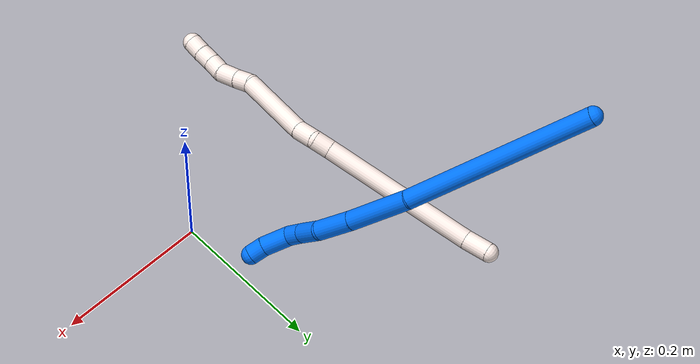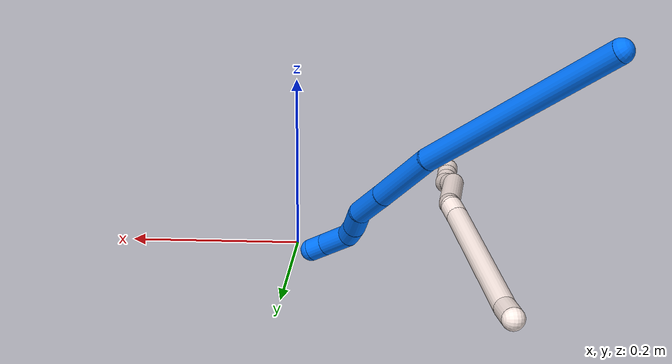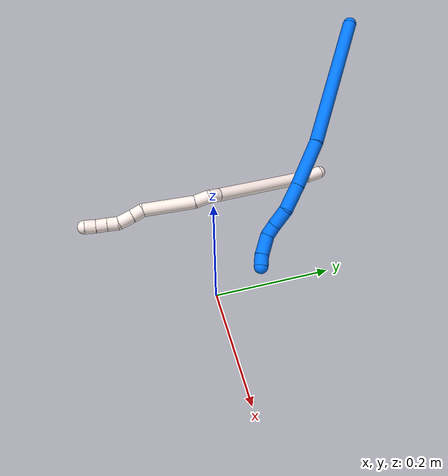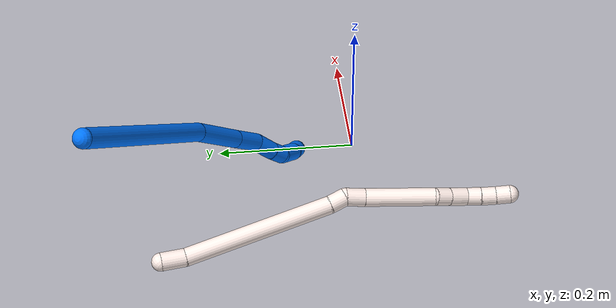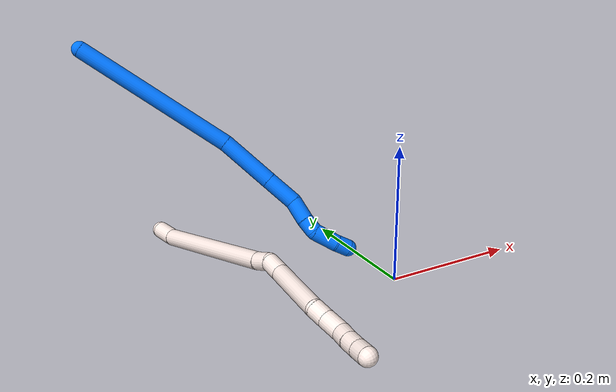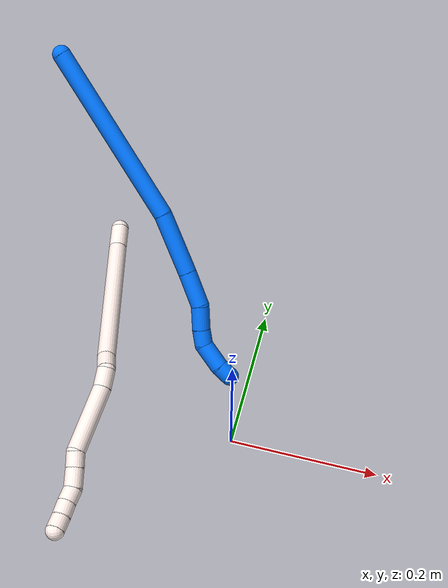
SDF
<sdf version="1.7">
 <world name="default">
  <model name="11">
   <static>0</static>
   <link name="11">
    <collision name="collision-cylinder-e_1_1_4">
     <pose>0.005634 -0.015909 -0.001959 1.6933 0.338007 0.381172</pose>
     <geometry><cylinder><radius>0.0125</radius><length>0.033981</length></cylinder></geometry>
     <surface>
      <friction><ode><mu>1.16</mu><mu2>1.16</mu2><slip1>0</slip1><slip2>0</slip2></ode></friction>
      <contact><ode><kp>1e+06</kp><kd>1</kd><max_vel>0</max_vel><min_depth>0.001</min_depth></ode></contact>
     </surface>
    </collision>
    <visual name="visual-cylinder-e_1_1_4">
     <pose>0.005634 -0.015909 -0.001959 1.6933 0.338007 0.381172</pose>
     <geometry><cylinder><radius>0.0125</radius><length>0.033981</length></cylinder></geometry>
     <material><ambient>1 0.933333 0.909804 1</ambient></material>
    </visual>
    <collision name="collision-cylinder-e_2_4_5">
     <pose>0.026203 -0.134518 -0.010772 1.63744 0.144089 0.153988</pose>
     <geometry><cylinder><radius>0.0125</radius><length>0.208013</length></cylinder></geometry>
     <surface>
      <friction><ode><mu>1.16</mu><mu2>1.16</mu2><slip1>0</slip1><slip2>0</slip2></ode></friction>
      <contact><ode><kp>1e+06</kp><kd>1</kd><max_vel>0</max_vel><min_depth>0.001</min_depth></ode></contact>
     </surface>
    </collision>
    <visual name="visual-cylinder-e_2_4_5">
     <pose>0.026203 -0.134518 -0.010772 1.63744 0.144089 0.153988</pose>
     <geometry><cylinder><radius>0.0125</radius><length>0.208013</length></cylinder></geometry>
     <material><ambient>1 0.933333 0.909804 1</ambient></material>
    </visual>
    <collision name="collision-cylinder-e_3_5_6">
     <pose>0.04164 -0.248876 -0.017371 1.54885 0.043123 0.042187</pose>
     <geometry><cylinder><radius>0.0125</radius><length>0.023342</length></cylinder></geometry>
     <surface>
      <friction><ode><mu>1.16</mu><mu2>1.16</mu2><slip1>0</slip1><slip2>0</slip2></ode></friction>
      <contact><ode><kp>1e+06</kp><kd>1</kd><max_vel>0</max_vel><min_depth>0.001</min_depth></ode></contact>
     </surface>
    </collision>
    <visual name="visual-cylinder-e_3_5_6">
     <pose>0.04164 -0.248876 -0.017371 1.54885 0.043123 0.042187</pose>
     <geometry><cylinder><radius>0.0125</radius><length>0.023342</length></cylinder></geometry>
     <material><ambient>1 0.933333 0.909804 1</ambient></material>
    </visual>
    <collision name="collision-cylinder-e_4_6_7">
     <pose>0.048545 -0.272419 -0.020482 1.84691 0.478115 0.623706</pose>
     <geometry><cylinder><radius>0.0125</radius><length>0.027827</length></cylinder></geometry>
     <surface>
      <friction><ode><mu>1.16</mu><mu2>1.16</mu2><slip1>0</slip1><slip2>0</slip2></ode></friction>
      <contact><ode><kp>1e+06</kp><kd>1</kd><max_vel>0</max_vel><min_depth>0.001</min_depth></ode></contact>
     </surface>
    </collision>
    <visual name="visual-cylinder-e_4_6_7">
     <pose>0.048545 -0.272419 -0.020482 1.84691 0.478115 0.623706</pose>
     <geometry><cylinder><radius>0.0125</radius><length>0.027827</length></cylinder></geometry>
     <material><ambient>1 0.933333 0.909804 1</ambient></material>
    </visual>
    <collision name="collision-cylinder-e_5_7_8">
     <pose>0.069093 -0.327359 -0.041275 1.95537 0.295646 0.434834</pose>
     <geometry><cylinder><radius>0.0125</radius><length>0.097107</length></cylinder></geometry>
     <surface>
      <friction><ode><mu>1.16</mu><mu2>1.16</mu2><slip1>0</slip1><slip2>0</slip2></ode></friction>
      <contact><ode><kp>1e+06</kp><kd>1</kd><max_vel>0</max_vel><min_depth>0.001</min_depth></ode></contact>
     </surface>
    </collision>
    <visual name="visual-cylinder-e_5_7_8">
     <pose>0.069093 -0.327359 -0.041275 1.95537 0.295646 0.434834</pose>
     <geometry><cylinder><radius>0.0125</radius><length>0.097107</length></cylinder></geometry>
     <material><ambient>1 0.933333 0.909804 1</ambient></material>
    </visual>
    <collision name="collision-cylinder-e_6_8_9">
     <pose>0.089251 -0.379295 -0.059736 1.68683 0.591847 0.659912</pose>
     <geometry><cylinder><radius>0.0125</radius><length>0.02155</length></cylinder></geometry>
     <surface>
      <friction><ode><mu>1.16</mu><mu2>1.16</mu2><slip1>0</slip1><slip2>0</slip2></ode></friction>
      <contact><ode><kp>1e+06</kp><kd>1</kd><max_vel>0</max_vel><min_depth>0.001</min_depth></ode></contact>
     </surface>
    </collision>
    <visual name="visual-cylinder-e_6_8_9">
     <pose>0.089251 -0.379295 -0.059736 1.68683 0.591847 0.659912</pose>
     <geometry><cylinder><radius>0.0125</radius><length>0.02155</length></cylinder></geometry>
     <material><ambient>1 0.933333 0.909804 1</ambient></material>
    </visual>
    <collision name="collision-cylinder-e_7_9_10">
     <pose>0.102233 -0.399691 -0.062392 1.71064 0.54011 0.616703</pose>
     <geometry><cylinder><radius>0.0125</radius><length>0.027113</length></cylinder></geometry>
     <surface>
      <friction><ode><mu>1.16</mu><mu2>1.16</mu2><slip1>0</slip1><slip2>0</slip2></ode></friction>
      <contact><ode><kp>1e+06</kp><kd>1</kd><max_vel>0</max_vel><min_depth>0.001</min_depth></ode></contact>
     </surface>
    </collision>
    <visual name="visual-cylinder-e_7_9_10">
     <pose>0.102233 -0.399691 -0.062392 1.71064 0.54011 0.616703</pose>
     <geometry><cylinder><radius>0.0125</radius><length>0.027113</length></cylinder></geometry>
     <material><ambient>1 0.933333 0.909804 1</ambient></material>
    </visual>
    <collision name="collision-cylinder-e_8_10_11">
     <pose>0.111908 -0.420252 -0.068057 1.99122 0.266315 0.407496</pose>
     <geometry><cylinder><radius>0.0125</radius><length>0.020547</length></cylinder></geometry>
     <surface>
      <friction><ode><mu>1.16</mu><mu2>1.16</mu2><slip1>0</slip1><slip2>0</slip2></ode></friction>
      <contact><ode><kp>1e+06</kp><kd>1</kd><max_vel>0</max_vel><min_depth>0.001</min_depth></ode></contact>
     </surface>
    </collision>
    <visual name="visual-cylinder-e_8_10_11">
     <pose>0.111908 -0.420252 -0.068057 1.99122 0.266315 0.407496</pose>
     <geometry><cylinder><radius>0.0125</radius><length>0.020547</length></cylinder></geometry>
     <material><ambient>1 0.933333 0.909804 1</ambient></material>
    </visual>
    <collision name="collision-cylinder-e_9_11_12">
     <pose>0.117219 -0.438579 -0.075473 1.91919 0.258149 0.366318</pose>
     <geometry><cylinder><radius>0.0125</radius><length>0.020419</length></cylinder></geometry>
     <surface>
      <friction><ode><mu>1.16</mu><mu2>1.16</mu2><slip1>0</slip1><slip2>0</slip2></ode></friction>
      <contact><ode><kp>1e+06</kp><kd>1</kd><max_vel>0</max_vel><min_depth>0.001</min_depth></ode></contact>
     </surface>
    </collision>
    <visual name="visual-cylinder-e_9_11_12">
     <pose>0.117219 -0.438579 -0.075473 1.91919 0.258149 0.366318</pose>
     <geometry><cylinder><radius>0.0125</radius><length>0.020419</length></cylinder></geometry>
     <material><ambient>1 0.933333 0.909804 1</ambient></material>
    </visual>
    <collision name="collision-cylinder-e_10_12_2">
     <pose>0.121678 -0.457079 -0.082382 1.93729 0.185432 0.268943</pose>
     <geometry><cylinder><radius>0.0125</radius><length>0.020101</length></cylinder></geometry>
     <surface>
      <friction><ode><mu>1.16</mu><mu2>1.16</mu2><slip1>0</slip1><slip2>0</slip2></ode></friction>
      <contact><ode><kp>1e+06</kp><kd>1</kd><max_vel>0</max_vel><min_depth>0.001</min_depth></ode></contact>
     </surface>
    </collision>
    <visual name="visual-cylinder-e_10_12_2">
     <pose>0.121678 -0.457079 -0.082382 1.93729 0.185432 0.268943</pose>
     <geometry><cylinder><radius>0.0125</radius><length>0.020101</length></cylinder></geometry>
     <material><ambient>1 0.933333 0.909804 1</ambient></material>
    </visual>
    <collision name="collision-sphere-2">
     <pose>0.123531 -0.466301 -0.085922 0 -0 0</pose>
     <geometry><sphere><radius>0.0125</radius></sphere></geometry>
     <surface>
      <friction><ode><mu>1.16</mu><mu2>1.16</mu2><slip1>0</slip1><slip2>0</slip2></ode></friction>
      <contact><ode><kp>1e+06</kp><kd>1</kd><max_vel>0</max_vel><min_depth>0.001</min_depth></ode></contact>
     </surface>
    </collision>
    <visual name="visual-sphere-2">
     <pose>0.123531 -0.466301 -0.085922 0 -0 0</pose>
     <geometry><sphere><radius>0.0125</radius></sphere></geometry>
     <material><ambient>1 0.933333 0.909804 1</ambient></material>
    </visual>
    <collision name="collision-sphere-12">
     <pose>0.119825 -0.447857 -0.078842 0 -0 0</pose>
     <geometry><sphere><radius>0.0125</radius></sphere></geometry>
     <surface>
      <friction><ode><mu>1.16</mu><mu2>1.16</mu2><slip1>0</slip1><slip2>0</slip2></ode></friction>
      <contact><ode><kp>1e+06</kp><kd>1</kd><max_vel>0</max_vel><min_depth>0.001</min_depth></ode></contact>
     </surface>
    </collision>
    <visual name="visual-sphere-12">
     <pose>0.119825 -0.447857 -0.078842 0 -0 0</pose>
     <geometry><sphere><radius>0.0125</radius></sphere></geometry>
     <material><ambient>1 0.933333 0.909804 1</ambient></material>
    </visual>
    <collision name="collision-sphere-11">
     <pose>0.114612 -0.429301 -0.072103 0 -0 0</pose>
     <geometry><sphere><radius>0.0125</radius></sphere></geometry>
     <surface>
      <friction><ode><mu>1.16</mu><mu2>1.16</mu2><slip1>0</slip1><slip2>0</slip2></ode></friction>
      <contact><ode><kp>1e+06</kp><kd>1</kd><max_vel>0</max_vel><min_depth>0.001</min_depth></ode></contact>
     </surface>
    </collision>
    <visual name="visual-sphere-11">
     <pose>0.114612 -0.429301 -0.072103 0 -0 0</pose>
     <geometry><sphere><radius>0.0125</radius></sphere></geometry>
     <material><ambient>1 0.933333 0.909804 1</ambient></material>
    </visual>
    <collision name="collision-sphere-10">
     <pose>0.109205 -0.411204 -0.064012 0 -0 0</pose>
     <geometry><sphere><radius>0.0125</radius></sphere></geometry>
     <surface>
      <friction><ode><mu>1.16</mu><mu2>1.16</mu2><slip1>0</slip1><slip2>0</slip2></ode></friction>
      <contact><ode><kp>1e+06</kp><kd>1</kd><max_vel>0</max_vel><min_depth>0.001</min_depth></ode></contact>
     </surface>
    </collision>
    <visual name="visual-sphere-10">
     <pose>0.109205 -0.411204 -0.064012 0 -0 0</pose>
     <geometry><sphere><radius>0.0125</radius></sphere></geometry>
     <material><ambient>1 0.933333 0.909804 1</ambient></material>
    </visual>
    <collision name="collision-sphere-9">
     <pose>0.095262 -0.388177 -0.060771 0 -0 0</pose>
     <geometry><sphere><radius>0.0125</radius></sphere></geometry>
     <surface>
      <friction><ode><mu>1.16</mu><mu2>1.16</mu2><slip1>0</slip1><slip2>0</slip2></ode></friction>
      <contact><ode><kp>1e+06</kp><kd>1</kd><max_vel>0</max_vel><min_depth>0.001</min_depth></ode></contact>
     </surface>
    </collision>
    <visual name="visual-sphere-9">
     <pose>0.095262 -0.388177 -0.060771 0 -0 0</pose>
     <geometry><sphere><radius>0.0125</radius></sphere></geometry>
     <material><ambient>1 0.933333 0.909804 1</ambient></material>
    </visual>
    <collision name="collision-sphere-4">
     <pose>0.011268 -0.031818 -0.003917 0 -0 0</pose>
     <geometry><sphere><radius>0.0125</radius></sphere></geometry>
     <surface>
      <friction><ode><mu>1.16</mu><mu2>1.16</mu2><slip1>0</slip1><slip2>0</slip2></ode></friction>
      <contact><ode><kp>1e+06</kp><kd>1</kd><max_vel>0</max_vel><min_depth>0.001</min_depth></ode></contact>
     </surface>
    </collision>
    <visual name="visual-sphere-4">
     <pose>0.011268 -0.031818 -0.003917 0 -0 0</pose>
     <geometry><sphere><radius>0.0125</radius></sphere></geometry>
     <material><ambient>1 0.933333 0.909804 1</ambient></material>
    </visual>
    <collision name="collision-sphere-1">
     <geometry><sphere><radius>0.0125</radius></sphere></geometry>
     <surface>
      <friction><ode><mu>1.16</mu><mu2>1.16</mu2><slip1>0</slip1><slip2>0</slip2></ode></friction>
      <contact><ode><kp>1e+06</kp><kd>1</kd><max_vel>0</max_vel><min_depth>0.001</min_depth></ode></contact>
     </surface>
    </collision>
    <visual name="visual-sphere-1">
     <geometry><sphere><radius>0.0125</radius></sphere></geometry>
     <material><ambient>1 0.933333 0.909804 1</ambient></material>
    </visual>
    <collision name="collision-sphere-8">
     <pose>0.08324 -0.370413 -0.0587 0 -0 0</pose>
     <geometry><sphere><radius>0.0125</radius></sphere></geometry>
     <surface>
      <friction><ode><mu>1.16</mu><mu2>1.16</mu2><slip1>0</slip1><slip2>0</slip2></ode></friction>
      <contact><ode><kp>1e+06</kp><kd>1</kd><max_vel>0</max_vel><min_depth>0.001</min_depth></ode></contact>
     </surface>
    </collision>
    <visual name="visual-sphere-8">
     <pose>0.08324 -0.370413 -0.0587 0 -0 0</pose>
     <geometry><sphere><radius>0.0125</radius></sphere></geometry>
     <material><ambient>1 0.933333 0.909804 1</ambient></material>
    </visual>
    <collision name="collision-sphere-5">
     <pose>0.041137 -0.237219 -0.017626 0 -0 0</pose>
     <geometry><sphere><radius>0.0125</radius></sphere></geometry>
     <surface>
      <friction><ode><mu>1.16</mu><mu2>1.16</mu2><slip1>0</slip1><slip2>0</slip2></ode></friction>
      <contact><ode><kp>1e+06</kp><kd>1</kd><max_vel>0</max_vel><min_depth>0.001</min_depth></ode></contact>
     </surface>
    </collision>
    <visual name="visual-sphere-5">
     <pose>0.041137 -0.237219 -0.017626 0 -0 0</pose>
     <geometry><sphere><radius>0.0125</radius></sphere></geometry>
     <material><ambient>1 0.933333 0.909804 1</ambient></material>
    </visual>
    <collision name="collision-sphere-6">
     <pose>0.042143 -0.260534 -0.017115 0 -0 0</pose>
     <geometry><sphere><radius>0.0125</radius></sphere></geometry>
     <surface>
      <friction><ode><mu>1.16</mu><mu2>1.16</mu2><slip1>0</slip1><slip2>0</slip2></ode></friction>
      <contact><ode><kp>1e+06</kp><kd>1</kd><max_vel>0</max_vel><min_depth>0.001</min_depth></ode></contact>
     </surface>
    </collision>
    <visual name="visual-sphere-6">
     <pose>0.042143 -0.260534 -0.017115 0 -0 0</pose>
     <geometry><sphere><radius>0.0125</radius></sphere></geometry>
     <material><ambient>1 0.933333 0.909804 1</ambient></material>
    </visual>
    <collision name="collision-sphere-7">
     <pose>0.054947 -0.284304 -0.02385 0 -0 0</pose>
     <geometry><sphere><radius>0.0125</radius></sphere></geometry>
     <surface>
      <friction><ode><mu>1.16</mu><mu2>1.16</mu2><slip1>0</slip1><slip2>0</slip2></ode></friction>
      <contact><ode><kp>1e+06</kp><kd>1</kd><max_vel>0</max_vel><min_depth>0.001</min_depth></ode></contact>
     </surface>
    </collision>
    <visual name="visual-sphere-7">
     <pose>0.054947 -0.284304 -0.02385 0 -0 0</pose>
     <geometry><sphere><radius>0.0125</radius></sphere></geometry>
     <material><ambient>1 0.933333 0.909804 1</ambient></material>
    </visual>
    <inertial>
     <pose>0.053016 -0.238979 -0.02973 0 -0 0</pose>
     <mass>0.5</mass>
     <inertia><ixx>0.00099</ixx><ixy>0</ixy><ixz>0</ixz><iyy>6.6e-05</iyy><iyz>0</iyz><izz>0.000691</izz></inertia>
    </inertial>
   </link>
   <pose>-0.242801 0.287574 0.018854 -1.37767 1.24497 -1.08026</pose>
  </model>
  <model name="14">
   <static>0</static>
   <link name="14">
    <collision name="collision-cylinder-e_1_1_4">
     <pose>0.007711 -0.007174 -0.126222 3.08482 0.060916 1.64121</pose>
     <geometry><cylinder><radius>0.0125</radius><length>0.253321</length></cylinder></geometry>
     <surface>
      <friction><ode><mu>1.16</mu><mu2>1.16</mu2><slip1>0</slip1><slip2>0</slip2></ode></friction>
      <contact><ode><kp>1e+06</kp><kd>1</kd><max_vel>0</max_vel><min_depth>0.001</min_depth></ode></contact>
     </surface>
    </collision>
    <visual name="visual-cylinder-e_1_1_4">
     <pose>0.007711 -0.007174 -0.126222 3.08482 0.060916 1.64121</pose>
     <geometry><cylinder><radius>0.0125</radius><length>0.253321</length></cylinder></geometry>
     <material><ambient>0 0.462745 1 1</ambient></material>
    </visual>
    <collision name="collision-cylinder-e_2_4_5">
     <pose>0.016214 -0.02382 -0.294205 2.91854 0.018502 0.164844</pose>
     <geometry><cylinder><radius>0.0125</radius><length>0.085658</length></cylinder></geometry>
     <surface>
      <friction><ode><mu>1.16</mu><mu2>1.16</mu2><slip1>0</slip1><slip2>0</slip2></ode></friction>
      <contact><ode><kp>1e+06</kp><kd>1</kd><max_vel>0</max_vel><min_depth>0.001</min_depth></ode></contact>
     </surface>
    </collision>
    <visual name="visual-cylinder-e_2_4_5">
     <pose>0.016214 -0.02382 -0.294205 2.91854 0.018502 0.164844</pose>
     <geometry><cylinder><radius>0.0125</radius><length>0.085658</length></cylinder></geometry>
     <material><ambient>0 0.462745 1 1</ambient></material>
    </visual>
    <collision name="collision-cylinder-e_3_5_6">
     <pose>0.018259 -0.039391 -0.359557 2.88859 0.051374 0.39867</pose>
     <geometry><cylinder><radius>0.0125</radius><length>0.048798</length></cylinder></geometry>
     <surface>
      <friction><ode><mu>1.16</mu><mu2>1.16</mu2><slip1>0</slip1><slip2>0</slip2></ode></friction>
      <contact><ode><kp>1e+06</kp><kd>1</kd><max_vel>0</max_vel><min_depth>0.001</min_depth></ode></contact>
     </surface>
    </collision>
    <visual name="visual-cylinder-e_3_5_6">
     <pose>0.018259 -0.039391 -0.359557 2.88859 0.051374 0.39867</pose>
     <geometry><cylinder><radius>0.0125</radius><length>0.048798</length></cylinder></geometry>
     <material><ambient>0 0.462745 1 1</ambient></material>
    </visual>
    <collision name="collision-cylinder-e_4_6_7">
     <pose>0.018313 -0.054314 -0.397112 2.57805 -0.072508 -0.249296</pose>
     <geometry><cylinder><radius>0.0125</radius><length>0.033123</length></cylinder></geometry>
     <surface>
      <friction><ode><mu>1.16</mu><mu2>1.16</mu2><slip1>0</slip1><slip2>0</slip2></ode></friction>
      <contact><ode><kp>1e+06</kp><kd>1</kd><max_vel>0</max_vel><min_depth>0.001</min_depth></ode></contact>
     </surface>
    </collision>
    <visual name="visual-cylinder-e_4_6_7">
     <pose>0.018313 -0.054314 -0.397112 2.57805 -0.072508 -0.249296</pose>
     <geometry><cylinder><radius>0.0125</radius><length>0.033123</length></cylinder></geometry>
     <material><ambient>0 0.462745 1 1</ambient></material>
    </visual>
    <collision name="collision-cylinder-e_5_7_8">
     <pose>0.017007 -0.068038 -0.421089 2.68651 -0.009514 -0.041085</pose>
     <geometry><cylinder><radius>0.0125</radius><length>0.022298</length></cylinder></geometry>
     <surface>
      <friction><ode><mu>1.16</mu><mu2>1.16</mu2><slip1>0</slip1><slip2>0</slip2></ode></friction>
      <contact><ode><kp>1e+06</kp><kd>1</kd><max_vel>0</max_vel><min_depth>0.001</min_depth></ode></contact>
     </surface>
    </collision>
    <visual name="visual-cylinder-e_5_7_8">
     <pose>0.017007 -0.068038 -0.421089 2.68651 -0.009514 -0.041085</pose>
     <geometry><cylinder><radius>0.0125</radius><length>0.022298</length></cylinder></geometry>
     <material><ambient>0 0.462745 1 1</ambient></material>
    </visual>
    <collision name="collision-cylinder-e_6_8_9">
     <pose>0.019285 -0.073003 -0.449329 3.13803 0.130064 3.08685</pose>
     <geometry><cylinder><radius>0.0125</radius><length>0.036762</length></cylinder></geometry>
     <surface>
      <friction><ode><mu>1.16</mu><mu2>1.16</mu2><slip1>0</slip1><slip2>0</slip2></ode></friction>
      <contact><ode><kp>1e+06</kp><kd>1</kd><max_vel>0</max_vel><min_depth>0.001</min_depth></ode></contact>
     </surface>
    </collision>
    <visual name="visual-cylinder-e_6_8_9">
     <pose>0.019285 -0.073003 -0.449329 3.13803 0.130064 3.08685</pose>
     <geometry><cylinder><radius>0.0125</radius><length>0.036762</length></cylinder></geometry>
     <material><ambient>0 0.462745 1 1</ambient></material>
    </visual>
    <collision name="collision-cylinder-e_7_9_2">
     <pose>0.022211 -0.07116 -0.477376 -2.94973 0.05415 -0.548665</pose>
     <geometry><cylinder><radius>0.0125</radius><length>0.02004</length></cylinder></geometry>
     <surface>
      <friction><ode><mu>1.16</mu><mu2>1.16</mu2><slip1>0</slip1><slip2>0</slip2></ode></friction>
      <contact><ode><kp>1e+06</kp><kd>1</kd><max_vel>0</max_vel><min_depth>0.001</min_depth></ode></contact>
     </surface>
    </collision>
    <visual name="visual-cylinder-e_7_9_2">
     <pose>0.022211 -0.07116 -0.477376 -2.94973 0.05415 -0.548665</pose>
     <geometry><cylinder><radius>0.0125</radius><length>0.02004</length></cylinder></geometry>
     <material><ambient>0 0.462745 1 1</ambient></material>
    </visual>
    <collision name="collision-sphere-2">
     <pose>0.022753 -0.069252 -0.487198 0 -0 0</pose>
     <geometry><sphere><radius>0.0125</radius></sphere></geometry>
     <surface>
      <friction><ode><mu>1.16</mu><mu2>1.16</mu2><slip1>0</slip1><slip2>0</slip2></ode></friction>
      <contact><ode><kp>1e+06</kp><kd>1</kd><max_vel>0</max_vel><min_depth>0.001</min_depth></ode></contact>
     </surface>
    </collision>
    <visual name="visual-sphere-2">
     <pose>0.022753 -0.069252 -0.487198 0 -0 0</pose>
     <geometry><sphere><radius>0.0125</radius></sphere></geometry>
     <material><ambient>0 0.462745 1 1</ambient></material>
    </visual>
    <collision name="collision-sphere-9">
     <pose>0.021669 -0.073068 -0.467554 0 -0 0</pose>
     <geometry><sphere><radius>0.0125</radius></sphere></geometry>
     <surface>
      <friction><ode><mu>1.16</mu><mu2>1.16</mu2><slip1>0</slip1><slip2>0</slip2></ode></friction>
      <contact><ode><kp>1e+06</kp><kd>1</kd><max_vel>0</max_vel><min_depth>0.001</min_depth></ode></contact>
     </surface>
    </collision>
    <visual name="visual-sphere-9">
     <pose>0.021669 -0.073068 -0.467554 0 -0 0</pose>
     <geometry><sphere><radius>0.0125</radius></sphere></geometry>
     <material><ambient>0 0.462745 1 1</ambient></material>
    </visual>
    <collision name="collision-sphere-4">
     <pose>0.015422 -0.014348 -0.252444 0 -0 0</pose>
     <geometry><sphere><radius>0.0125</radius></sphere></geometry>
     <surface>
      <friction><ode><mu>1.16</mu><mu2>1.16</mu2><slip1>0</slip1><slip2>0</slip2></ode></friction>
      <contact><ode><kp>1e+06</kp><kd>1</kd><max_vel>0</max_vel><min_depth>0.001</min_depth></ode></contact>
     </surface>
    </collision>
    <visual name="visual-sphere-4">
     <pose>0.015422 -0.014348 -0.252444 0 -0 0</pose>
     <geometry><sphere><radius>0.0125</radius></sphere></geometry>
     <material><ambient>0 0.462745 1 1</ambient></material>
    </visual>
    <collision name="collision-sphere-1">
     <geometry><sphere><radius>0.0125</radius></sphere></geometry>
     <surface>
      <friction><ode><mu>1.16</mu><mu2>1.16</mu2><slip1>0</slip1><slip2>0</slip2></ode></friction>
      <contact><ode><kp>1e+06</kp><kd>1</kd><max_vel>0</max_vel><min_depth>0.001</min_depth></ode></contact>
     </surface>
    </collision>
    <visual name="visual-sphere-1">
     <geometry><sphere><radius>0.0125</radius></sphere></geometry>
     <material><ambient>0 0.462745 1 1</ambient></material>
    </visual>
    <collision name="collision-sphere-8">
     <pose>0.016901 -0.072938 -0.431103 0 -0 0</pose>
     <geometry><sphere><radius>0.0125</radius></sphere></geometry>
     <surface>
      <friction><ode><mu>1.16</mu><mu2>1.16</mu2><slip1>0</slip1><slip2>0</slip2></ode></friction>
      <contact><ode><kp>1e+06</kp><kd>1</kd><max_vel>0</max_vel><min_depth>0.001</min_depth></ode></contact>
     </surface>
    </collision>
    <visual name="visual-sphere-8">
     <pose>0.016901 -0.072938 -0.431103 0 -0 0</pose>
     <geometry><sphere><radius>0.0125</radius></sphere></geometry>
     <material><ambient>0 0.462745 1 1</ambient></material>
    </visual>
    <collision name="collision-sphere-5">
     <pose>0.017007 -0.033292 -0.335965 0 -0 0</pose>
     <geometry><sphere><radius>0.0125</radius></sphere></geometry>
     <surface>
      <friction><ode><mu>1.16</mu><mu2>1.16</mu2><slip1>0</slip1><slip2>0</slip2></ode></friction>
      <contact><ode><kp>1e+06</kp><kd>1</kd><max_vel>0</max_vel><min_depth>0.001</min_depth></ode></contact>
     </surface>
    </collision>
    <visual name="visual-sphere-5">
     <pose>0.017007 -0.033292 -0.335965 0 -0 0</pose>
     <geometry><sphere><radius>0.0125</radius></sphere></geometry>
     <material><ambient>0 0.462745 1 1</ambient></material>
    </visual>
    <collision name="collision-sphere-6">
     <pose>0.019512 -0.045491 -0.383148 0 -0 0</pose>
     <geometry><sphere><radius>0.0125</radius></sphere></geometry>
     <surface>
      <friction><ode><mu>1.16</mu><mu2>1.16</mu2><slip1>0</slip1><slip2>0</slip2></ode></friction>
      <contact><ode><kp>1e+06</kp><kd>1</kd><max_vel>0</max_vel><min_depth>0.001</min_depth></ode></contact>
     </surface>
    </collision>
    <visual name="visual-sphere-6">
     <pose>0.019512 -0.045491 -0.383148 0 -0 0</pose>
     <geometry><sphere><radius>0.0125</radius></sphere></geometry>
     <material><ambient>0 0.462745 1 1</ambient></material>
    </visual>
    <collision name="collision-sphere-7">
     <pose>0.017113 -0.063138 -0.411075 0 -0 0</pose>
     <geometry><sphere><radius>0.0125</radius></sphere></geometry>
     <surface>
      <friction><ode><mu>1.16</mu><mu2>1.16</mu2><slip1>0</slip1><slip2>0</slip2></ode></friction>
      <contact><ode><kp>1e+06</kp><kd>1</kd><max_vel>0</max_vel><min_depth>0.001</min_depth></ode></contact>
     </surface>
    </collision>
    <visual name="visual-sphere-7">
     <pose>0.017113 -0.063138 -0.411075 0 -0 0</pose>
     <geometry><sphere><radius>0.0125</radius></sphere></geometry>
     <material><ambient>0 0.462745 1 1</ambient></material>
    </visual>
    <inertial>
     <pose>0.012746 -0.026412 -0.246698 0 -0 0</pose>
     <mass>0.5</mass>
     <inertia>
      <ixx>0.001344</ixx>
      <ixy>0</ixy>
      <ixz>0</ixz>
      <iyy>0.001401</iyy>
      <iyz>0</iyz>
      <izz>-2.8e-05</izz>
     </inertia>
    </inertial>
   </link>
   <pose>-0.32607 0.353885 0.301865 0.513635 -0.859154 -1.18439</pose>
  </model>
 </world>
</sdf>
